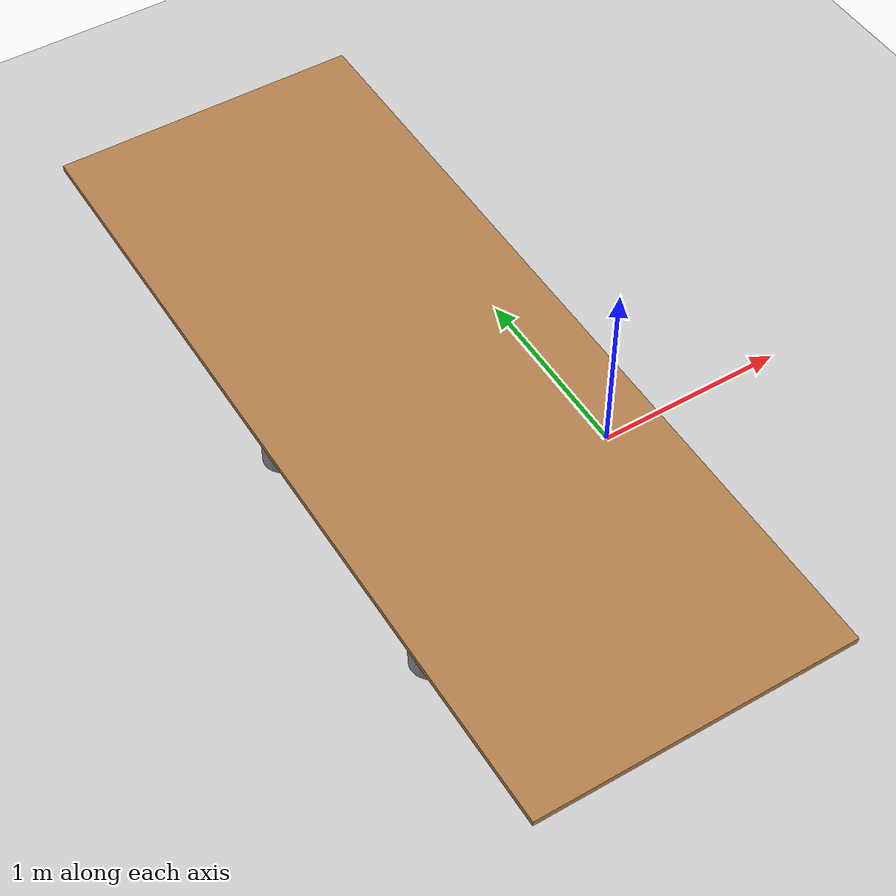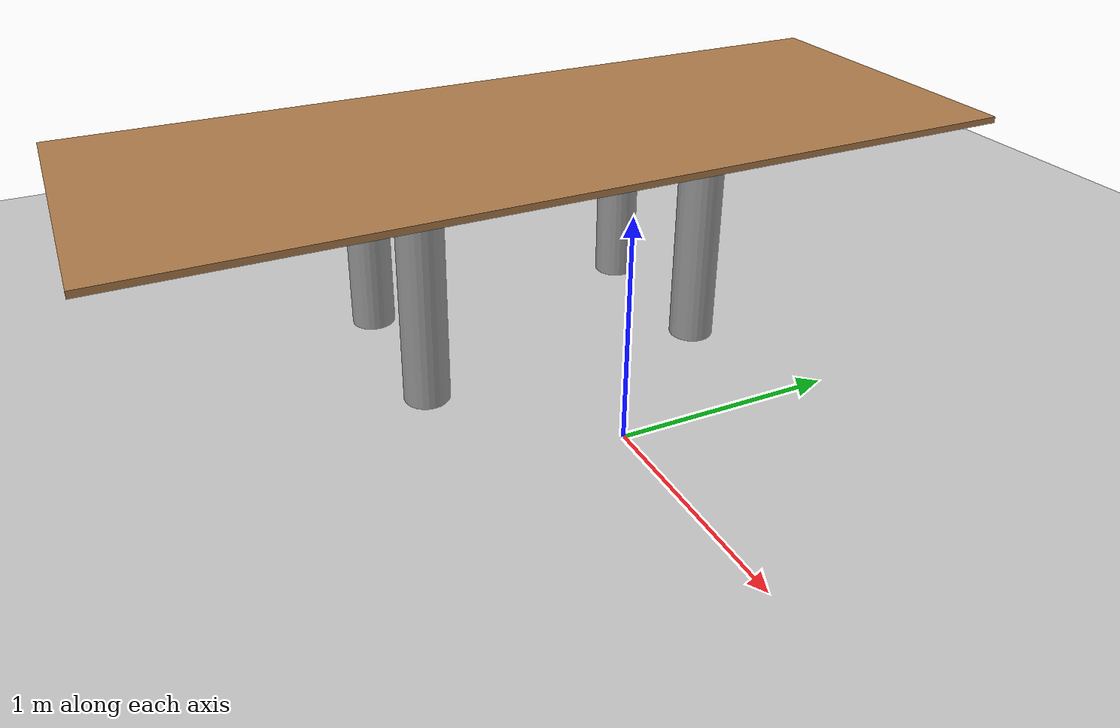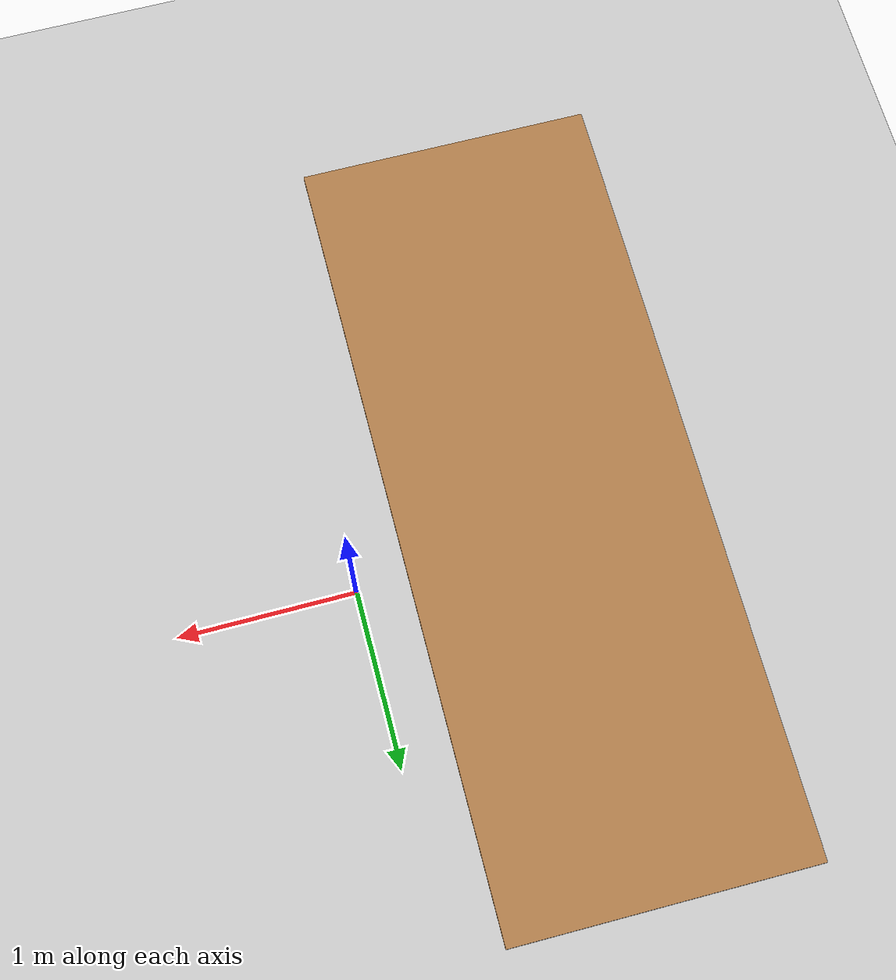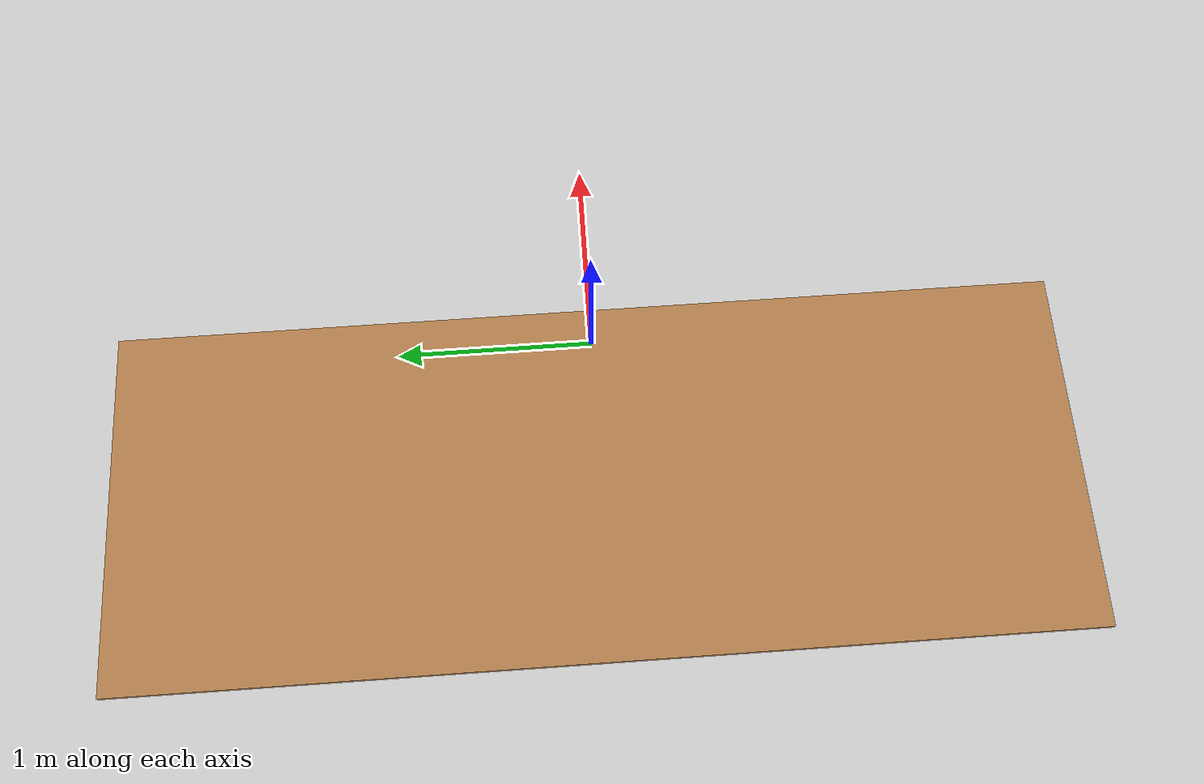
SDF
<sdf version="1.6">
 <world name="default">
  <light name="sun" type="directional">
   <pose>0 0 10 0 -0 0</pose>
   <diffuse>0.8 0.8 0.8 1</diffuse>
   <specular>0.2 0.2 0.2 1</specular>
   <attenuation>
    <range>1000</range>
    <constant>0.9</constant>
    <linear>0.01</linear>
    <quadratic>0.001</quadratic>
   </attenuation>
   <direction>-0.5 0.1 -0.9</direction>
  </light>
  <model name="ground_plane">
   <static>1</static>
   <link name="link">
    <collision name="collision">
     <geometry><plane><normal>0 0 1</normal><size>100 100</size></plane></geometry>
     <surface>
      <contact><collide_bitmask>65535</collide_bitmask></contact>
      <friction><ode><mu>100</mu><mu2>50</mu2></ode></friction>
     </surface>
    </collision>
    <visual name="visual">
     <cast_shadows>0</cast_shadows>
     <geometry><plane><normal>0 0 1</normal><size>100 100</size></plane></geometry>
     <material>
      <script><uri>file://media/materials/scripts/gazebo.material</uri><name>Gazebo/Grey</name></script>
     </material>
    </visual>
   </link>
  </model>
  <gravity>0 0 -9.8</gravity>
  <physics name="default_physics" default="0" type="ode">
   <real_time_update_rate>5000</real_time_update_rate>
   <max_step_size>0.001</max_step_size>
   <real_time_factor>1</real_time_factor>
   <ode>
    <solver>
     <type>quick</type>
     <iters>150</iters>
     <precon_iters>0</precon_iters>
     <sor>1.4</sor>
     <use_dynamic_moi_rescaling>1</use_dynamic_moi_rescaling>
    </solver>
    <constraints>
     <cfm>1e-05</cfm>
     <erp>0.2</erp>
     <contact_max_correcting_vel>2000</contact_max_correcting_vel>
     <contact_surface_layer>0.01</contact_surface_layer>
    </constraints>
   </ode>
  </physics>
  <scene><ambient>0.4 0.4 0.4 1</ambient><background>0.7 0.7 0.7 1</background><shadows>1</shadows></scene>
  <magnetic_field>6e-06 2.3e-05 -4.2e-05</magnetic_field>
  <atmosphere type="adiabatic"/>
  <audio><device>default</device></audio>
  <spherical_coordinates>
   <surface_model>EARTH_WGS84</surface_model>
   <latitude_deg>0</latitude_deg>
   <longitude_deg>0</longitude_deg>
   <elevation>0</elevation>
   <heading_deg>0</heading_deg>
  </spherical_coordinates>
  <model name="table">
   <link name="link">
    <inertial>
     <inertia><ixx>0</ixx><ixy>0</ixy><ixz>0</ixz><iyy>0</iyy><iyz>0</iyz><izz>0</izz></inertia>
     <mass>0</mass>
    </inertial>
    <pose>-1.13775 0.614597 0 0 -0 0</pose>
    <visual name="visual1">
     <pose>0 0 1 0 -0 0</pose>
     <geometry><box><size>4.06235 1.52268 0.03</size></box></geometry>
     <material>
      <script><uri>file://media/materials/scripts/gazebo.material</uri><name>Gazebo/Wood</name></script>
     </material>
    </visual>
    <visual name="back_left_leg">
     <pose>-0.68 0.38 0.5 0 -0 0</pose>
     <geometry><cylinder><radius>0.102749</radius><length>1</length></cylinder></geometry>
     <material>
      <script><uri>file://media/materials/scripts/gazebo.material</uri><name>Gazebo/Grey</name></script>
     </material>
    </visual>
    <visual name="front_left_leg">
     <pose>0.68 0.38 0.5 0 -0 0</pose>
     <geometry><cylinder><radius>0.102749</radius><length>1</length></cylinder></geometry>
     <material>
      <script><uri>file://media/materials/scripts/gazebo.material</uri><name>Gazebo/Grey</name></script>
     </material>
    </visual>
    <visual name="front_right_leg">
     <pose>0.68 -0.38 0.5 0 -0 0</pose>
     <geometry><cylinder><radius>0.102749</radius><length>1</length></cylinder></geometry>
     <material>
      <script><uri>file://media/materials/scripts/gazebo.material</uri><name>Gazebo/Grey</name></script>
     </material>
    </visual>
    <visual name="back_right_leg">
     <pose>-0.68 -0.38 0.5 0 -0 0</pose>
     <geometry><cylinder><radius>0.102749</radius><length>1</length></cylinder></geometry>
     <material>
      <script><uri>file://media/materials/scripts/gazebo.material</uri><name>Gazebo/Grey</name></script>
     </material>
    </visual>
    <collision name="surface">
     <pose>0 0 1 0 -0 0</pose>
     <geometry><box><size>4.06235 1.52268 0.03</size></box></geometry>
     <surface>
      <friction>
       <ode><mu>0.6</mu><mu2>0.6</mu2><fdir1>0 0 0</fdir1><slip1>0</slip1><slip2>0</slip2></ode>
       <torsional>
        <coefficient>1</coefficient>
        <patch_radius>0</patch_radius>
        <surface_radius>0</surface_radius>
        <use_patch_radius>1</use_patch_radius>
        <ode><slip>0</slip></ode>
       </torsional>
      </friction>
      <bounce><restitution_coefficient>0</restitution_coefficient><threshold>1e+06</threshold></bounce>
      <contact>
       <collide_without_contact>0</collide_without_contact>
       <collide_without_contact_bitmask>1</collide_without_contact_bitmask>
       <collide_bitmask>1</collide_bitmask>
       <ode>
        <soft_cfm>0</soft_cfm>
        <soft_erp>0.2</soft_erp>
        <kp>1e+13</kp>
        <kd>1</kd>
        <max_vel>0.01</max_vel>
        <min_depth>0</min_depth>
       </ode>
       <bullet>
        <split_impulse>1</split_impulse>
        <split_impulse_penetration_threshold>-0.01</split_impulse_penetration_threshold>
        <soft_cfm>0</soft_cfm>
        <soft_erp>0.2</soft_erp>
        <kp>1e+13</kp>
        <kd>1</kd>
       </bullet>
      </contact>
     </surface>
    </collision>
    <collision name="front_left_leg">
     <pose>0.68 0.38 0.5 0 -0 0</pose>
     <geometry><cylinder><radius>0.102749</radius><length>1</length></cylinder></geometry>
     <surface>
      <friction>
       <ode><mu>1</mu><mu2>1</mu2><fdir1>0 0 0</fdir1><slip1>0</slip1><slip2>0</slip2></ode>
       <torsional>
        <coefficient>1</coefficient>
        <patch_radius>0</patch_radius>
        <surface_radius>0</surface_radius>
        <use_patch_radius>1</use_patch_radius>
        <ode><slip>0</slip></ode>
       </torsional>
      </friction>
      <bounce><restitution_coefficient>0</restitution_coefficient><threshold>1e+06</threshold></bounce>
      <contact>
       <collide_without_contact>0</collide_without_contact>
       <collide_without_contact_bitmask>1</collide_without_contact_bitmask>
       <collide_bitmask>1</collide_bitmask>
       <ode>
        <soft_cfm>0</soft_cfm>
        <soft_erp>0.2</soft_erp>
        <kp>1e+13</kp>
        <kd>1</kd>
        <max_vel>0.01</max_vel>
        <min_depth>0</min_depth>
       </ode>
       <bullet>
        <split_impulse>1</split_impulse>
        <split_impulse_penetration_threshold>-0.01</split_impulse_penetration_threshold>
        <soft_cfm>0</soft_cfm>
        <soft_erp>0.2</soft_erp>
        <kp>1e+13</kp>
        <kd>1</kd>
       </bullet>
      </contact>
     </surface>
    </collision>
    <collision name="front_right_leg">
     <pose>0.68 -0.38 0.5 0 -0 0</pose>
     <geometry><cylinder><radius>0.102749</radius><length>1</length></cylinder></geometry>
     <surface>
      <friction>
       <ode><mu>1</mu><mu2>1</mu2><fdir1>0 0 0</fdir1><slip1>0</slip1><slip2>0</slip2></ode>
       <torsional>
        <coefficient>1</coefficient>
        <patch_radius>0</patch_radius>
        <surface_radius>0</surface_radius>
        <use_patch_radius>1</use_patch_radius>
        <ode><slip>0</slip></ode>
       </torsional>
      </friction>
      <bounce><restitution_coefficient>0</restitution_coefficient><threshold>1e+06</threshold></bounce>
      <contact>
       <collide_without_contact>0</collide_without_contact>
       <collide_without_contact_bitmask>1</collide_without_contact_bitmask>
       <collide_bitmask>1</collide_bitmask>
       <ode>
        <soft_cfm>0</soft_cfm>
        <soft_erp>0.2</soft_erp>
        <kp>1e+13</kp>
        <kd>1</kd>
        <max_vel>0.01</max_vel>
        <min_depth>0</min_depth>
       </ode>
       <bullet>
        <split_impulse>1</split_impulse>
        <split_impulse_penetration_threshold>-0.01</split_impulse_penetration_threshold>
        <soft_cfm>0</soft_cfm>
        <soft_erp>0.2</soft_erp>
        <kp>1e+13</kp>
        <kd>1</kd>
       </bullet>
      </contact>
     </surface>
    </collision>
    <collision name="back_right_leg">
     <pose>-0.68 -0.38 0.5 0 -0 0</pose>
     <geometry><cylinder><radius>0.102749</radius><length>1</length></cylinder></geometry>
     <surface>
      <friction>
       <ode><mu>1</mu><mu2>1</mu2><fdir1>0 0 0</fdir1><slip1>0</slip1><slip2>0</slip2></ode>
       <torsional>
        <coefficient>1</coefficient>
        <patch_radius>0</patch_radius>
        <surface_radius>0</surface_radius>
        <use_patch_radius>1</use_patch_radius>
        <ode><slip>0</slip></ode>
       </torsional>
      </friction>
      <bounce><restitution_coefficient>0</restitution_coefficient><threshold>1e+06</threshold></bounce>
      <contact>
       <collide_without_contact>0</collide_without_contact>
       <collide_without_contact_bitmask>1</collide_without_contact_bitmask>
       <collide_bitmask>1</collide_bitmask>
       <ode>
        <soft_cfm>0</soft_cfm>
        <soft_erp>0.2</soft_erp>
        <kp>1e+13</kp>
        <kd>1</kd>
        <max_vel>0.01</max_vel>
        <min_depth>0</min_depth>
       </ode>
       <bullet>
        <split_impulse>1</split_impulse>
        <split_impulse_penetration_threshold>-0.01</split_impulse_penetration_threshold>
        <soft_cfm>0</soft_cfm>
        <soft_erp>0.2</soft_erp>
        <kp>1e+13</kp>
        <kd>1</kd>
       </bullet>
      </contact>
     </surface>
    </collision>
    <collision name="back_left_leg">
     <pose>-0.68 0.38 0.5 0 -0 0</pose>
     <geometry><cylinder><radius>0.102749</radius><length>1</length></cylinder></geometry>
     <surface>
      <friction>
       <ode><mu>1</mu><mu2>1</mu2><fdir1>0 0 0</fdir1><slip1>0</slip1><slip2>0</slip2></ode>
       <torsional>
        <coefficient>1</coefficient>
        <patch_radius>0</patch_radius>
        <surface_radius>0</surface_radius>
        <use_patch_radius>1</use_patch_radius>
        <ode><slip>0</slip></ode>
       </torsional>
      </friction>
      <bounce><restitution_coefficient>0</restitution_coefficient><threshold>1e+06</threshold></bounce>
      <contact>
       <collide_without_contact>0</collide_without_contact>
       <collide_without_contact_bitmask>1</collide_without_contact_bitmask>
       <collide_bitmask>1</collide_bitmask>
       <ode>
        <soft_cfm>0</soft_cfm>
        <soft_erp>0.2</soft_erp>
        <kp>1e+13</kp>
        <kd>1</kd>
        <max_vel>0.01</max_vel>
        <min_depth>0</min_depth>
       </ode>
       <bullet>
        <split_impulse>1</split_impulse>
        <split_impulse_penetration_threshold>-0.01</split_impulse_penetration_threshold>
        <soft_cfm>0</soft_cfm>
        <soft_erp>0.2</soft_erp>
        <kp>1e+13</kp>
        <kd>1</kd>
       </bullet>
      </contact>
     </surface>
    </collision>
   </link>
   <static>1</static>
   <pose>-1.62652 -1.09172 0 0 0 -1.57221</pose>
  </model>
 </world>
</sdf>
